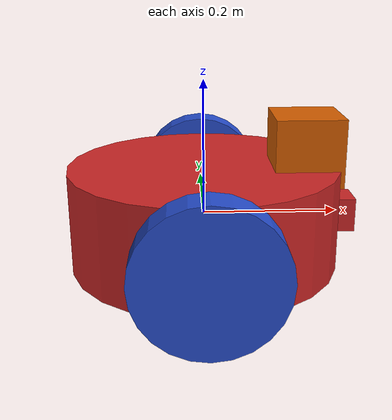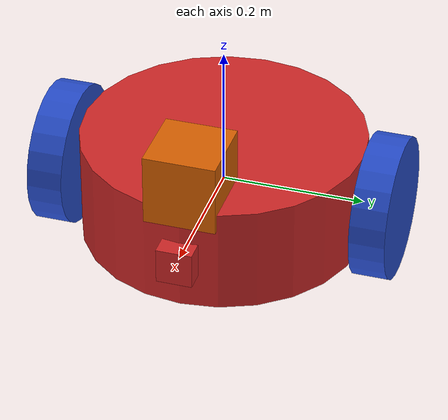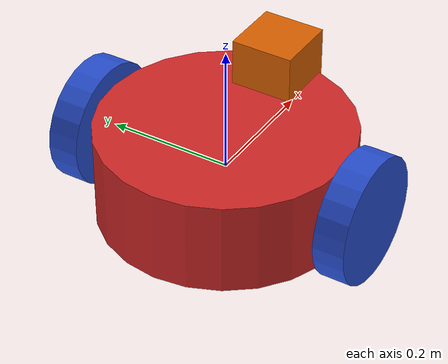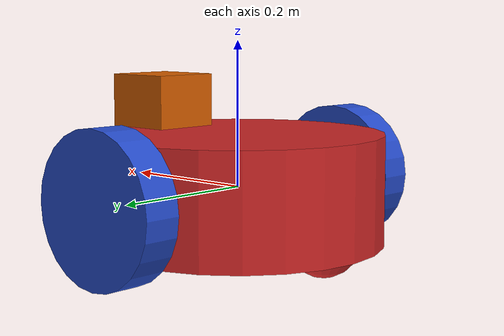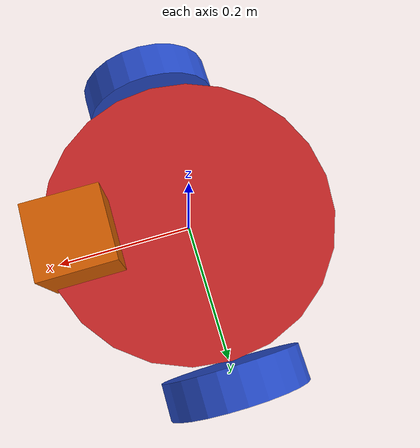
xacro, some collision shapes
<?xml version='1.0'?>

<robot name="my_robot" xmlns:xacro="http://www.ros.org/wiki/xacro">
<xacro:include filename="$(find my_robot)/urdf/my_robot.gazebo" />

  <!--Link1:footprint-->

  <link name="robot_footprint"></link>

  <joint name="robot_footprint_joint" type="fixed">
    <origin xyz="0 0 0" rpy="0 0 0" />
    <parent link="robot_footprint"/>
    <child link="chassis" />
  </joint>

  <!--Link2:chasis-->

  <link name='chassis'>
    <pose>0 0 0.1 0 0 0</pose>

    <inertial>
      <mass value="15.0"/>
      <origin xyz="0.0 0 0" rpy=" 0 0 0"/>
      <inertia
          ixx="0.1" ixy="0" ixz="0"
          iyy="0.1" iyz="0"
          izz="0.1"
      />
    </inertial>

    <collision name='chasis_collision'>
      <origin xyz="0 0 0" rpy=" 0 0 0"/>
      <geometry>
        <cylinder radius="0.2" length="0.15"/>
      </geometry>
    </collision>

    <visual name='chassis_visual'>
      <origin xyz="0 0 0" rpy=" 0 0 0"/>
      <geometry>
        <cylinder radius="0.2" length="0.15"/>
      </geometry>
    </visual>

    <collision name='back_caster_collision'>
      <origin xyz="-0.15 0 -0.05" rpy=" 0 0 0"/>
      <geometry>
        <sphere radius="0.0499"/>
      </geometry>
    </collision>

    <visual name='back_caster_visual'>
      <origin xyz="-0.15 0 -0.05" rpy=" 0 0 0"/>
      <geometry>
        <sphere radius="0.05"/>
      </geometry>
    </visual>

    <collision name='front_caster_collision'>
      <origin xyz="0.15 0 -0.05" rpy=" 0 0 0"/>
      <geometry>
        <sphere radius="0.0499"/>
      </geometry>
    </collision>

    <visual name='front_caster_visual'>
      <origin xyz="0.15 0 -0.05" rpy=" 0 0 0"/>
      <geometry>
        <sphere radius="0.05"/>
      </geometry>
    </visual>

  </link>

  <!--Link3:left_wheel-->
  <link name="left_wheel">
    <collision name='left_wheel_collision'>
      <origin xyz="0 0 0" rpy="0 1.5707 1.5707"/>
      <geometry>
        <cylinder radius="0.1" length="0.05"/>
      </geometry>
    </collision>

    <visual name='left_wheel_visual'>
      <origin xyz="0 0 0" rpy="0 1.5707 1.5707"/>
      <geometry>
        <cylinder radius="0.1" length="0.05"/>
      </geometry>
    </visual>

    <inertial>
      <mass value="5.0"/>
      <origin xyz="0.0 0 0" rpy="0 1.5707 1.5707"/>
      <inertia
          ixx="0.1" ixy="0" ixz="0"
          iyy="0.1" iyz="0"
          izz="0.1"
      />
    </inertial>
  </link>

  <!--Link4:right_wheel-->
  <link name="right_wheel">
    <collision name='right_wheel_collision'>
      <origin xyz="0 0 0" rpy="0 1.5707 1.5707"/>
      <geometry>
        <cylinder radius="0.1" length="0.05"/>
      </geometry>
    </collision>

    <visual name='right_wheel_visual'>
      <origin xyz="0 0 0" rpy="0 1.5707 1.5707"/>
      <geometry>
        <cylinder radius="0.1" length="0.05"/>
      </geometry>
    </visual>

    <inertial>
      <mass value="5.0"/>
      <origin xyz="0.0 0 0" rpy="0 1.5707 1.5707"/>
      <inertia
          ixx="0.1" ixy="0" ixz="0"
          iyy="0.1" iyz="0"
          izz="0.1"
      />
    </inertial>
  </link>

  <!--Joint1:right wheel hinge-->
  <joint type="continuous" name="left_wheel_hinge">
    <origin xyz="0 0.23 0" rpy="0 0 0"/>
    <child link="left_wheel"/>
    <parent link="chassis"/>
    <axis xyz="0 1 0" rpy="0 0 0"/>
    <limit effort="10000" velocity="1000"/>
    <dynamics damping="1.0" friction="1.0"/>
  </joint>

  <!--Joint2:right wheel hinge-->
  <joint type="continuous" name="right_wheel_hinge">
    <origin xyz="0 -0.23 0" rpy="0 0 0"/>
    <child link="right_wheel"/>
    <parent link="chassis"/>
    <axis xyz="0 1 0" rpy="0 0 0"/>
    <limit effort="10000" velocity="1000"/>
    <dynamics damping="1.0" friction="1.0"/>
  </joint>

  <!--Sensor1:camera-->

  <link name="camera">
    <collision name='camera_collision'>
      <origin xyz="0 0 0" rpy="0 0 0"/>
      <geometry>
        <box size="0.05 0.05 0.05"/>
      </geometry>
    </collision>

    <visual name='camera_visual'>
      <origin xyz="0 0 0" rpy="0 1.5707 1.5707"/>
      <geometry>
        <box size="0.05 0.05 0.05"/>
      </geometry>
    </visual>

    <inertial>
      <mass value="0.1"/>
      <origin xyz="0.0 0 0" rpy="0 1.5707 1.5707"/>
      <inertia
          ixx="1e-6" ixy="0" ixz="0"
          iyy="1e-6" iyz="0"
          izz="1e-6"
      />
    </inertial>
  </link>

  <!--Joint3:camera joint-->

  <joint type="fixed" name="camera_joint">
    <origin xyz="0.2 0 0" rpy="0 0 0"/>
    <child link="camera"/>
    <parent link="chassis"/>
    <axis xyz="0 1 0" rpy="0 0 0"/>
  </joint>

  <!--Sensor2:Lidar-->
  <link name="hokuyo">
    <collision name='hokuyo_collision'>
      <origin xyz="0 0 0" rpy="0 0 0"/>
      <geometry>
        <box size="0.1 0.1 0.1"/>
      </geometry>
    </collision>

    <visual name='hokuyo_visual'>
      <origin xyz="0 0 0" rpy="0 0 0"/>
      <geometry>
        <mesh filename="package://my_robot/meshes/hokuyo.dae"/>
      </geometry>
    </visual>

    <inertial>
      <mass value="1e-5"/>
      <origin xyz="0.0 0 0" rpy="0 0 0"/>
      <inertia
          ixx="1e-6" ixy="0" ixz="0"
          iyy="1e-6" iyz="0"
          izz="1e-6"
      />
    </inertial>
  </link>

  <!--Joint4:Lidar joint-->
  <joint type="fixed" name="hokuyo_joint">
    <origin xyz="0.15 0 0.1" rpy="0 0 0"/>
    <child link="hokuyo"/>
    <parent link="chassis"/>
    <axis xyz="0 1 0" rpy="0 0 0"/>
  </joint>

  <!--Add colors:http://gazebosim.org/tutorials/?tut=ros_urdf-->
  <gazebo reference="chassis">
    <material>Gazebo/Red</material>
  </gazebo>

  <gazebo reference="left_wheel">
    <material>Gazebo/Blue</material>
  </gazebo>

  <gazebo reference="right_wheel">
    <material>Gazebo/Blue</material>
  </gazebo>

  <gazebo reference="camera">
    <material>Gazebo/Red</material>
  </gazebo>

</robot>
